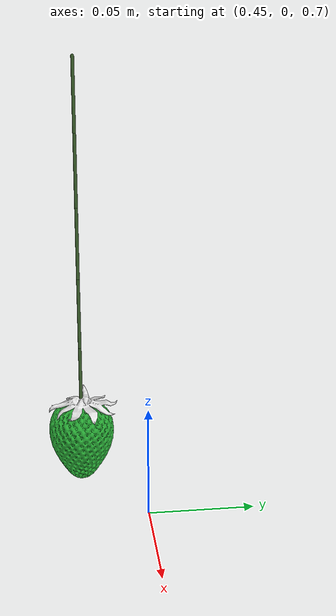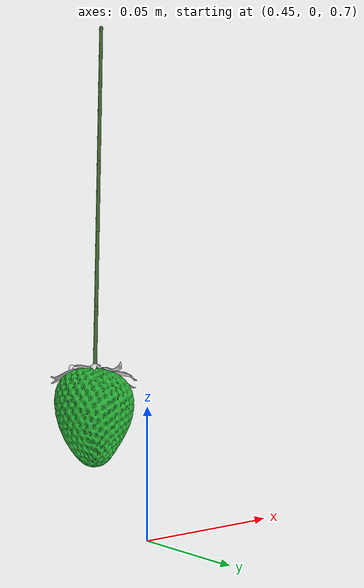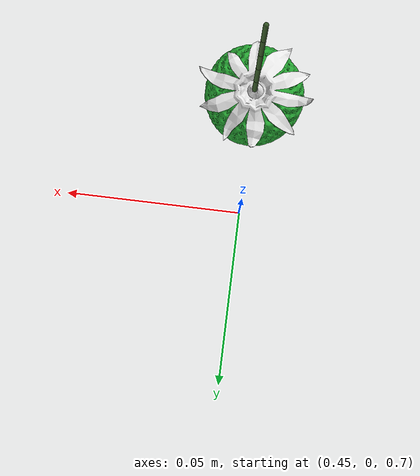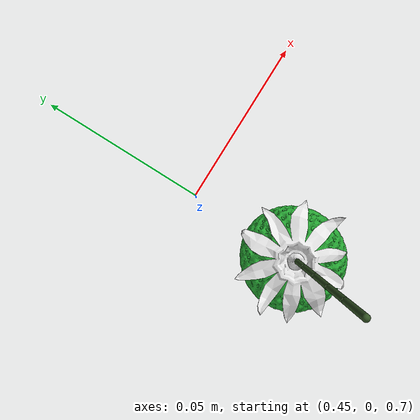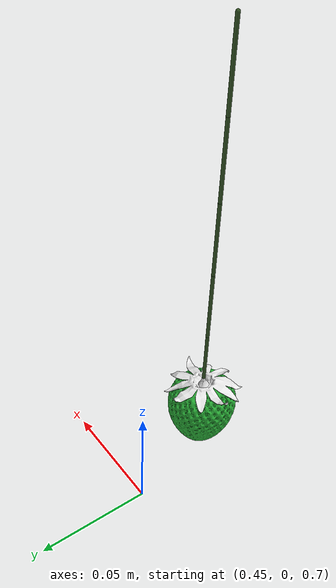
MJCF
<mujoco model="strawb_vine">
  <compiler angle="radian" meshdir="assets/"/>

  <asset>
    <texture name="strawb_leaves" type="2d" file="textures/strawberry_leaves_512.png"/>
    <texture name="strawb_texture" type="2d" file="textures/strawberry_fixed_512_green.png"/>
    <material name="strawberry_material" texture="strawb_texture" shininess="0.01" specular="0.01" reflectance="0.05" texuniform="true"/>
    <material name="strawberry_leaves" texture="strawb_leaves" shininess="0.1" specular="0.1" reflectance="0.5" texuniform="true"/>
    <mesh name="strawberry" file="strawberry_origin.obj" scale="1.0 1.0 1.0"/>
    <mesh name="strawberry_leaves" file="strawberry_leaves_origin.obj" scale="1.0 1.0 1.0"/>
    <mesh name="strawberry_collision" file="strawberry_collision_origin.obj" scale="1.0 1.0 1.0"/>
  </asset>

  <worldbody>
    <body name="vine1" pos="0.45 -0.03 0.9" quat="0.707388 0 0.706825 0">
      <body name="aB_first">
        <joint name="aJ_first" pos="0 0 0" type="ball" group="3" actuatorfrclimited="false" damping="0.001"/>
        <geom name="aG0" size="0.0007 0.015" pos="0.015 0 0" quat="0.707107 0 -0.707107 0" type="capsule" solref="0.001 1" solimp="0.97 0.995 0.0005 0.5 2" mass="0.0001" rgba="0.208 0.337 0.149 1"/>
        <site name="aS_first" pos="0 0 0" group="3"/>
        <body name="aB_1" pos="0.03 0 0">
          <joint name="aJ_1" pos="0 0 0" type="ball" group="3" actuatorfrclimited="false" damping="0.001"/>
          <geom name="aG1" size="0.0007 0.015" pos="0.015 0 0" quat="0.707107 0 -0.707107 0" type="capsule" solref="0.001 1" solimp="0.97 0.995 0.0005 0.5 2" mass="0.0001" rgba="0.208 0.337 0.149 1"/>
          <body name="aB_2" pos="0.03 0 0">
            <joint name="aJ_2" pos="0 0 0" type="ball" group="3" actuatorfrclimited="false" damping="0.001"/>
            <geom name="aG2" size="0.0007 0.015" pos="0.015 0 0" quat="0.707107 0 -0.707107 0" type="capsule" solref="0.001 1" solimp="0.97 0.995 0.0005 0.5 2" mass="0.0001" rgba="0.208 0.337 0.149 1"/>
            <body name="aB_last" pos="0.03 0 0">
              <joint name="aJ_last" pos="0 0 0" type="ball" group="3" actuatorfrclimited="false" damping="0.001"/>
              <geom name="aG3" size="0.0007 0.015" pos="0.015 0 0" quat="0.707107 0 -0.707107 0" type="capsule" solref="0.001 1" solimp="0.97 0.995 0.0005 0.5 2" mass="0.0001" rgba="0.208 0.337 0.149 1"/>
              <site name="aS_last" pos="0.03 0 0" group="3"/>
              <body name="stem1" pos="0.091 -0.00024 0.00052" quat="0.707388 0 0 0.706825">
                <geom name="stem1" type="capsule" size="0.0007 0.012" pos="0.0002 0.049 -0.00055" euler="-1.57 0.0 0.0" rgba="0.208 0.337 0.149 1"/>
                <site name="stem1" pos="0.0001 0.054 -0.0004" size="0.0012" rgba="0 0 1 1" group="3"/>
                <body name="block1" pos="0.00019 0.0382 -0.00055">
                  <geom name="block1" type="mesh" mesh="strawberry_collision" density="400" group="3"/>
                  <geom name="block1_visual" type="mesh" mesh="strawberry" material="strawberry_material" contype="0" conaffinity="0"/>
                  <geom name="leaves1" type="mesh" mesh="strawberry_leaves" rgba="0.9 0.9 0.9 1.0" material="strawberry_leaves" contype="0" conaffinity="0"/>
                </body>
              </body>
            </body>
          </body>
        </body>
      </body>
    </body>
  </worldbody>

</mujoco>
